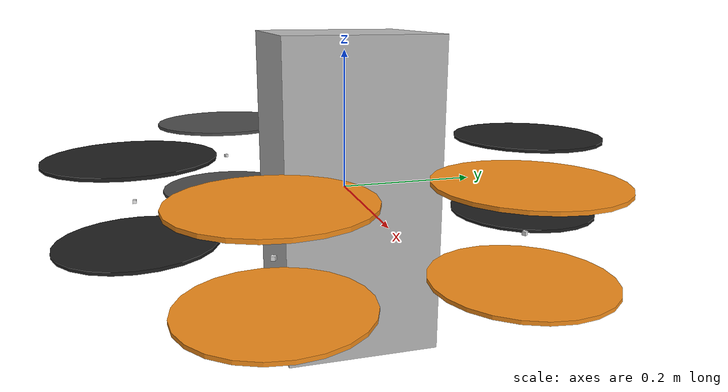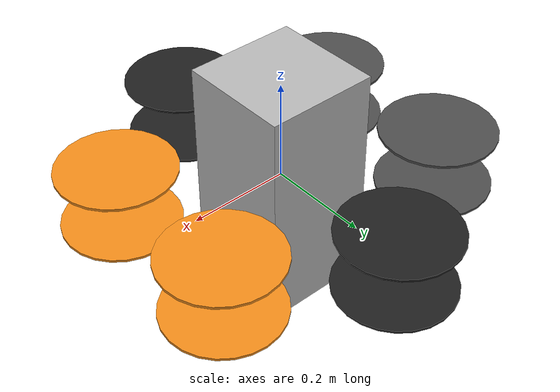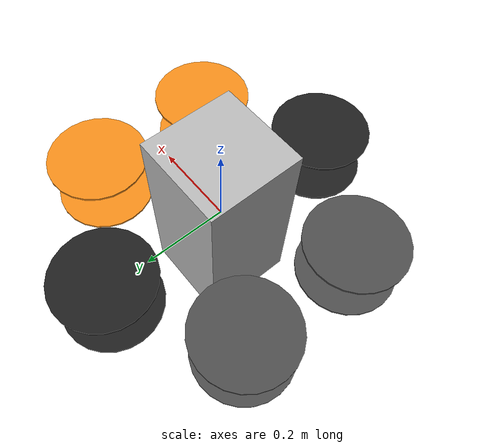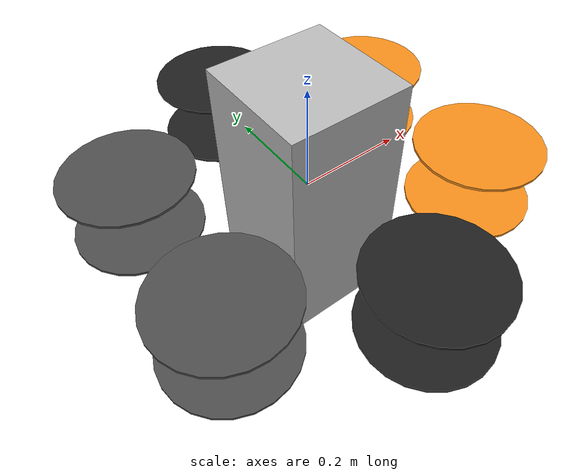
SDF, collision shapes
<sdf version='1.6'>
  <model name='ouzel'>
    <link name='ouzel/base_link'>
      <pose frame=''>0 0 0 0 -0 0</pose>
      <inertial>
        <pose frame=''>0 0 0 0 -0 0</pose>
        <mass>3.13</mass>
        <inertia>
          <ixx>0.0075</ixx>
          <ixy>-3.4208e-05</ixy>
          <ixz>2.4695e-05</ixz>
          <iyy>0.010939</iyy>
          <iyz>-3.8826e-06</iyz>
          <izz>0.01369</izz>
        </inertia>
      </inertial>
      <collision name='ouzel/base_link_inertia_collision'>
        <pose frame=''>0 0 0 0 -0 0</pose>
        <geometry>
          <box>
            <size>0.22 0.22 0.45</size>
          </box>
        </geometry>
      </collision>
      <visual name='ouzel/base_link_inertia_visual'>
        <pose frame=''>0 0 0 0 -0 0</pose>
        <geometry>
          <mesh>
            <scale>1 1 1</scale>
            <uri>model://mav_description/meshes/ouzel_simple.stl</uri>
          </mesh>
        </geometry>
      </visual>
    </link>
    <link name='ouzel/imu_link'>
      <pose frame=''>0 0 0 0 -0 0</pose>
      <inertial>
        <pose frame=''>0 0 0 0 -0 0</pose>
        <mass>0.015</mass>
        <inertia>
          <ixx>1e-05</ixx>
          <ixy>0</ixy>
          <ixz>0</ixz>
          <iyy>1e-05</iyy>
          <iyz>0</iyz>
          <izz>1e-05</izz>
        </inertia>
      </inertial>
    </link>
    <joint name='ouzel/imu_joint' type='revolute'>
      <child>ouzel/imu_link</child>
      <parent>ouzel/base_link</parent>
      <axis>
        <xyz>1 0 0</xyz>
        <limit>
          <lower>0</lower>
          <upper>0</upper>
          <effort>0</effort>
          <velocity>0</velocity>
        </limit>
        <dynamics>
          <spring_reference>0</spring_reference>
          <spring_stiffness>0</spring_stiffness>
        </dynamics>
        <use_parent_model_frame>1</use_parent_model_frame>
      </axis>
    </joint>
    <link name='ouzel/odometry_sensor1_link'>
      <pose frame=''>0 0 0 0 -0 0</pose>
      <inertial>
        <pose frame=''>0 0 0 0 -0 0</pose>
        <mass>1e-05</mass>
        <inertia>
          <ixx>1e-05</ixx>
          <ixy>0</ixy>
          <ixz>0</ixz>
          <iyy>1e-05</iyy>
          <iyz>0</iyz>
          <izz>1e-05</izz>
        </inertia>
      </inertial>
    </link>
    <joint name='ouzel/odometry_sensor1_joint' type='revolute'>
      <child>ouzel/odometry_sensor1_link</child>
      <parent>ouzel/base_link</parent>
      <axis>
        <xyz>1 0 0</xyz>
        <limit>
          <lower>0</lower>
          <upper>0</upper>
          <effort>0</effort>
          <velocity>0</velocity>
        </limit>
        <dynamics>
          <spring_reference>0</spring_reference>
          <spring_stiffness>0</spring_stiffness>
        </dynamics>
        <use_parent_model_frame>1</use_parent_model_frame>
      </axis>
    </joint>
    <link name='ouzel/tilt_unit_0'>
      <pose frame=''>0 -0.3 0 0 -0 -1.5708</pose>
      <inertial>
        <pose frame=''>0 0 0 0 -0 0</pose>
        <mass>0.277</mass>
        <inertia>
          <ixx>0.00034257</ixx>
          <ixy>0</ixy>
          <ixz>0</ixz>
          <iyy>0.0013205</iyy>
          <iyz>0</iyz>
          <izz>0.0010037</izz>
        </inertia>
      </inertial>
      <collision name='ouzel/tilt_unit_0_collision'>
        <pose frame=''>0 0 0 0 -0 0</pose>
        <geometry>
          <box>
            <size>0.005 0.005 0.005</size>
          </box>
        </geometry>
        <surface>
          <contact>
            <ode/>
          </contact>
          <friction>
            <ode/>
          </friction>
        </surface>
      </collision>
      <visual name='ouzel/tilt_unit_0_visual'>
        <pose frame=''>0 0 0 0 -0 0</pose>
        <geometry>
          <mesh>
            <scale>1 1 1</scale>
            <uri>model://rotors_description/meshes/omav/omav_tiltarm.dae</uri>
          </mesh>
        </geometry>
        <material>
          <script>
            <name>Gazebo/White</name>
            <uri>file://media/materials/scripts/gazebo.material</uri>
          </script>
        </material>
      </visual>
      <gravity>1</gravity>
      <velocity_decay/>
    </link>
    <joint name='ouzel/tilt_unit_0_revolutejoint' type='revolute'>
      <child>ouzel/tilt_unit_0</child>
      <parent>ouzel/base_link</parent>
      <axis>
        <xyz>-0 -1 0</xyz>
        <limit>
          <lower>-1e+16</lower>
          <upper>1e+16</upper>
        </limit>
        <dynamics>
          <spring_reference>0</spring_reference>
          <spring_stiffness>0</spring_stiffness>
        </dynamics>
        <use_parent_model_frame>1</use_parent_model_frame>
      </axis>
    </joint>
    <link name='rotor_0'>
      <pose frame=''>0 -0.3 0.06 0 -0 -1.5708</pose>
      <inertial>
        <pose frame=''>0 0 0 0 -0 0</pose>
        <mass>0.0065</mass>
        <inertia>
          <ixx>2.21542e-06</ixx>
          <ixy>0</ixy>
          <ixz>0</ixz>
          <iyy>7.08147e-05</iyy>
          <iyz>0</iyz>
          <izz>7.29326e-05</izz>
        </inertia>
      </inertial>
      <collision name='rotor_0_collision'>
        <pose frame=''>0 0 0 0 -0 0</pose>
        <geometry>
          <cylinder>
            <length>0.005</length>
            <radius>0.1143</radius>
          </cylinder>
        </geometry>
        <surface>
          <contact>
            <ode/>
          </contact>
          <friction>
            <ode/>
          </friction>
        </surface>
      </collision>
      <visual name='rotor_0_visual'>
        <pose frame=''>0 0 0 0 -0 0</pose>
        <geometry>
          <mesh>
            <scale>0.1143 0.1143 0.1143</scale>
            <uri>model://rotors_description/meshes/propeller_ccw.dae</uri>
          </mesh>
        </geometry>
        <material>
          <script>
            <name>Gazebo/Black</name>
            <uri>file://media/materials/scripts/gazebo.material</uri>
          </script>
        </material>
      </visual>
      <gravity>1</gravity>
      <velocity_decay/>
    </link>
    <joint name='rotor_0_joint' type='revolute'>
      <child>rotor_0</child>
      <parent>ouzel/tilt_unit_0</parent>
      <axis>
        <xyz>0 0 1</xyz>
        <limit>
          <lower>-1e+16</lower>
          <upper>1e+16</upper>
        </limit>
        <dynamics>
          <spring_reference>0</spring_reference>
          <spring_stiffness>0</spring_stiffness>
        </dynamics>
        <use_parent_model_frame>1</use_parent_model_frame>
      </axis>
    </joint>
    <link name='rotor_6'>
      <pose frame=''>0 -0.3 -0.06 0 -0 -1.5708</pose>
      <inertial>
        <pose frame=''>0 0 0 0 -0 0</pose>
        <mass>0.0065</mass>
        <inertia>
          <ixx>2.21542e-06</ixx>
          <ixy>0</ixy>
          <ixz>0</ixz>
          <iyy>7.08147e-05</iyy>
          <iyz>0</iyz>
          <izz>7.29326e-05</izz>
        </inertia>
      </inertial>
      <collision name='rotor_6_collision'>
        <pose frame=''>0 0 0 0 -0 0</pose>
        <geometry>
          <cylinder>
            <length>0.005</length>
            <radius>0.1143</radius>
          </cylinder>
        </geometry>
        <surface>
          <contact>
            <ode/>
          </contact>
          <friction>
            <ode/>
          </friction>
        </surface>
      </collision>
      <visual name='rotor_6_visual'>
        <pose frame=''>0 0 0 0 -0 0</pose>
        <geometry>
          <mesh>
            <scale>0.1143 0.1143 0.1143</scale>
            <uri>model://rotors_description/meshes/propeller_cw.dae</uri>
          </mesh>
        </geometry>
        <material>
          <script>
            <name>Gazebo/Black</name>
            <uri>file://media/materials/scripts/gazebo.material</uri>
          </script>
        </material>
      </visual>
      <gravity>1</gravity>
      <velocity_decay/>
    </link>
    <joint name='rotor_6_joint' type='revolute'>
      <child>rotor_6</child>
      <parent>ouzel/tilt_unit_0</parent>
      <axis>
        <xyz>0 0 1</xyz>
        <limit>
          <lower>-1e+16</lower>
          <upper>1e+16</upper>
        </limit>
        <dynamics>
          <spring_reference>0</spring_reference>
          <spring_stiffness>0</spring_stiffness>
        </dynamics>
        <use_parent_model_frame>1</use_parent_model_frame>
      </axis>
    </joint>
    <link name='ouzel/tilt_unit_1'>
      <pose frame=''>0 0.3 0 0 -0 1.5708</pose>
      <inertial>
        <pose frame=''>0 0 0 0 -0 0</pose>
        <mass>0.277</mass>
        <inertia>
          <ixx>0.00034257</ixx>
          <ixy>0</ixy>
          <ixz>0</ixz>
          <iyy>0.0013205</iyy>
          <iyz>0</iyz>
          <izz>0.0010037</izz>
        </inertia>
      </inertial>
      <collision name='ouzel/tilt_unit_1_collision'>
        <pose frame=''>0 0 0 0 -0 0</pose>
        <geometry>
          <box>
            <size>0.005 0.005 0.005</size>
          </box>
        </geometry>
        <surface>
          <contact>
            <ode/>
          </contact>
          <friction>
            <ode/>
          </friction>
        </surface>
      </collision>
      <visual name='ouzel/tilt_unit_1_visual'>
        <pose frame=''>0 0 0 0 -0 0</pose>
        <geometry>
          <mesh>
            <scale>1 1 1</scale>
            <uri>model://rotors_description/meshes/omav/omav_tiltarm.dae</uri>
          </mesh>
        </geometry>
        <material>
          <script>
            <name>Gazebo/White</name>
            <uri>file://media/materials/scripts/gazebo.material</uri>
          </script>
        </material>
      </visual>
      <gravity>1</gravity>
      <velocity_decay/>
    </link>
    <joint name='ouzel/tilt_unit_1_revolutejoint' type='revolute'>
      <child>ouzel/tilt_unit_1</child>
      <parent>ouzel/base_link</parent>
      <axis>
        <xyz>0 1 0</xyz>
        <limit>
          <lower>-1e+16</lower>
          <upper>1e+16</upper>
        </limit>
        <dynamics>
          <spring_reference>0</spring_reference>
          <spring_stiffness>0</spring_stiffness>
        </dynamics>
        <use_parent_model_frame>1</use_parent_model_frame>
      </axis>
    </joint>
    <link name='rotor_1'>
      <pose frame=''>0 0.3 0.06 0 -0 1.5708</pose>
      <inertial>
        <pose frame=''>0 0 0 0 -0 0</pose>
        <mass>0.0065</mass>
        <inertia>
          <ixx>2.21542e-06</ixx>
          <ixy>0</ixy>
          <ixz>0</ixz>
          <iyy>7.08147e-05</iyy>
          <iyz>0</iyz>
          <izz>7.29326e-05</izz>
        </inertia>
      </inertial>
      <collision name='rotor_1_collision'>
        <pose frame=''>0 0 0 0 -0 0</pose>
        <geometry>
          <cylinder>
            <length>0.005</length>
            <radius>0.1143</radius>
          </cylinder>
        </geometry>
        <surface>
          <contact>
            <ode/>
          </contact>
          <friction>
            <ode/>
          </friction>
        </surface>
      </collision>
      <visual name='rotor_1_visual'>
        <pose frame=''>0 0 0 0 -0 0</pose>
        <geometry>
          <mesh>
            <scale>0.1143 0.1143 0.1143</scale>
            <uri>model://rotors_description/meshes/propeller_cw.dae</uri>
          </mesh>
        </geometry>
        <material>
          <script>
            <name>Gazebo/Black</name>
            <uri>file://media/materials/scripts/gazebo.material</uri>
          </script>
        </material>
      </visual>
      <gravity>1</gravity>
      <velocity_decay/>
    </link>
    <joint name='rotor_1_joint' type='revolute'>
      <child>rotor_1</child>
      <parent>ouzel/tilt_unit_1</parent>
      <axis>
        <xyz>0 0 1</xyz>
        <limit>
          <lower>-1e+16</lower>
          <upper>1e+16</upper>
        </limit>
        <dynamics>
          <spring_reference>0</spring_reference>
          <spring_stiffness>0</spring_stiffness>
        </dynamics>
        <use_parent_model_frame>1</use_parent_model_frame>
      </axis>
    </joint>
    <link name='rotor_7'>
      <pose frame=''>0 0.3 -0.06 0 -0 1.5708</pose>
      <inertial>
        <pose frame=''>0 0 0 0 -0 0</pose>
        <mass>0.0065</mass>
        <inertia>
          <ixx>2.21542e-06</ixx>
          <ixy>0</ixy>
          <ixz>0</ixz>
          <iyy>7.08147e-05</iyy>
          <iyz>0</iyz>
          <izz>7.29326e-05</izz>
        </inertia>
      </inertial>
      <collision name='rotor_7_collision'>
        <pose frame=''>0 0 0 0 -0 0</pose>
        <geometry>
          <cylinder>
            <length>0.005</length>
            <radius>0.1143</radius>
          </cylinder>
        </geometry>
        <surface>
          <contact>
            <ode/>
          </contact>
          <friction>
            <ode/>
          </friction>
        </surface>
      </collision>
      <visual name='rotor_7_visual'>
        <pose frame=''>0 0 0 0 -0 0</pose>
        <geometry>
          <mesh>
            <scale>0.1143 0.1143 0.1143</scale>
            <uri>model://rotors_description/meshes/propeller_ccw.dae</uri>
          </mesh>
        </geometry>
        <material>
          <script>
            <name>Gazebo/Black</name>
            <uri>file://media/materials/scripts/gazebo.material</uri>
          </script>
        </material>
      </visual>
      <gravity>1</gravity>
      <velocity_decay/>
    </link>
    <joint name='rotor_7_joint' type='revolute'>
      <child>rotor_7</child>
      <parent>ouzel/tilt_unit_1</parent>
      <axis>
        <xyz>0 0 1</xyz>
        <limit>
          <lower>-1e+16</lower>
          <upper>1e+16</upper>
        </limit>
        <dynamics>
          <spring_reference>0</spring_reference>
          <spring_stiffness>0</spring_stiffness>
        </dynamics>
        <use_parent_model_frame>1</use_parent_model_frame>
      </axis>
    </joint>
    <link name='ouzel/tilt_unit_2'>
      <pose frame=''>0.259808 0.15 0 0 -0 0.523599</pose>
      <inertial>
        <pose frame=''>0 0 0 0 -0 0</pose>
        <mass>0.277</mass>
        <inertia>
          <ixx>0.00034257</ixx>
          <ixy>0</ixy>
          <ixz>0</ixz>
          <iyy>0.0013205</iyy>
          <iyz>0</iyz>
          <izz>0.0010037</izz>
        </inertia>
      </inertial>
      <collision name='ouzel/tilt_unit_2_collision'>
        <pose frame=''>0 0 0 0 -0 0</pose>
        <geometry>
          <box>
            <size>0.005 0.005 0.005</size>
          </box>
        </geometry>
        <surface>
          <contact>
            <ode/>
          </contact>
          <friction>
            <ode/>
          </friction>
        </surface>
      </collision>
      <visual name='ouzel/tilt_unit_2_visual'>
        <pose frame=''>0 0 0 0 -0 0</pose>
        <geometry>
          <mesh>
            <scale>1 1 1</scale>
            <uri>model://rotors_description/meshes/omav/omav_tiltarm.dae</uri>
          </mesh>
        </geometry>
        <material>
          <script>
            <name>Gazebo/White</name>
            <uri>file://media/materials/scripts/gazebo.material</uri>
          </script>
        </material>
      </visual>
      <gravity>1</gravity>
      <velocity_decay/>
    </link>
    <joint name='ouzel/tilt_unit_2_revolutejoint' type='revolute'>
      <child>ouzel/tilt_unit_2</child>
      <parent>ouzel/base_link</parent>
      <axis>
        <xyz>0.866025 0.5 0</xyz>
        <limit>
          <lower>-1e+16</lower>
          <upper>1e+16</upper>
        </limit>
        <dynamics>
          <spring_reference>0</spring_reference>
          <spring_stiffness>0</spring_stiffness>
        </dynamics>
        <use_parent_model_frame>1</use_parent_model_frame>
      </axis>
    </joint>
    <link name='rotor_2'>
      <pose frame=''>0.259808 0.15 0.06 0 -0 0.523599</pose>
      <inertial>
        <pose frame=''>0 0 0 0 -0 0</pose>
        <mass>0.0065</mass>
        <inertia>
          <ixx>2.21542e-06</ixx>
          <ixy>0</ixy>
          <ixz>0</ixz>
          <iyy>7.08147e-05</iyy>
          <iyz>0</iyz>
          <izz>7.29326e-05</izz>
        </inertia>
      </inertial>
      <collision name='rotor_2_collision'>
        <pose frame=''>0 0 0 0 -0 0</pose>
        <geometry>
          <cylinder>
            <length>0.005</length>
            <radius>0.1143</radius>
          </cylinder>
        </geometry>
        <surface>
          <contact>
            <ode/>
          </contact>
          <friction>
            <ode/>
          </friction>
        </surface>
      </collision>
      <visual name='rotor_2_visual'>
        <pose frame=''>0 0 0 0 -0 0</pose>
        <geometry>
          <mesh>
            <scale>0.1143 0.1143 0.1143</scale>
            <uri>model://rotors_description/meshes/propeller_ccw.dae</uri>
          </mesh>
        </geometry>
        <material>
          <script>
            <name>Gazebo/Orange</name>
            <uri>file://media/materials/scripts/gazebo.material</uri>
          </script>
        </material>
      </visual>
      <gravity>1</gravity>
      <velocity_decay/>
    </link>
    <joint name='rotor_2_joint' type='revolute'>
      <child>rotor_2</child>
      <parent>ouzel/tilt_unit_2</parent>
      <axis>
        <xyz>0 0 1</xyz>
        <limit>
          <lower>-1e+16</lower>
          <upper>1e+16</upper>
        </limit>
        <dynamics>
          <spring_reference>0</spring_reference>
          <spring_stiffness>0</spring_stiffness>
        </dynamics>
        <use_parent_model_frame>1</use_parent_model_frame>
      </axis>
    </joint>
    <link name='rotor_8'>
      <pose frame=''>0.259808 0.15 -0.06 0 -0 0.523599</pose>
      <inertial>
        <pose frame=''>0 0 0 0 -0 0</pose>
        <mass>0.0065</mass>
        <inertia>
          <ixx>2.21542e-06</ixx>
          <ixy>0</ixy>
          <ixz>0</ixz>
          <iyy>7.08147e-05</iyy>
          <iyz>0</iyz>
          <izz>7.29326e-05</izz>
        </inertia>
      </inertial>
      <collision name='rotor_8_collision'>
        <pose frame=''>0 0 0 0 -0 0</pose>
        <geometry>
          <cylinder>
            <length>0.005</length>
            <radius>0.1143</radius>
          </cylinder>
        </geometry>
        <surface>
          <contact>
            <ode/>
          </contact>
          <friction>
            <ode/>
          </friction>
        </surface>
      </collision>
      <visual name='rotor_8_visual'>
        <pose frame=''>0 0 0 0 -0 0</pose>
        <geometry>
          <mesh>
            <scale>0.1143 0.1143 0.1143</scale>
            <uri>model://rotors_description/meshes/propeller_cw.dae</uri>
          </mesh>
        </geometry>
        <material>
          <script>
            <name>Gazebo/Orange</name>
            <uri>file://media/materials/scripts/gazebo.material</uri>
          </script>
        </material>
      </visual>
      <gravity>1</gravity>
      <velocity_decay/>
    </link>
    <joint name='rotor_8_joint' type='revolute'>
      <child>rotor_8</child>
      <parent>ouzel/tilt_unit_2</parent>
      <axis>
        <xyz>0 0 1</xyz>
        <limit>
          <lower>-1e+16</lower>
          <upper>1e+16</upper>
        </limit>
        <dynamics>
          <spring_reference>0</spring_reference>
          <spring_stiffness>0</spring_stiffness>
        </dynamics>
        <use_parent_model_frame>1</use_parent_model_frame>
      </axis>
    </joint>
    <link name='ouzel/tilt_unit_3'>
      <pose frame=''>-0.259808 -0.15 0 0 -0 -2.61799</pose>
      <inertial>
        <pose frame=''>0 0 0 0 -0 0</pose>
        <mass>0.277</mass>
        <inertia>
          <ixx>0.00034257</ixx>
          <ixy>0</ixy>
          <ixz>0</ixz>
          <iyy>0.0013205</iyy>
          <iyz>0</iyz>
          <izz>0.0010037</izz>
        </inertia>
      </inertial>
      <collision name='ouzel/tilt_unit_3_collision'>
        <pose frame=''>0 0 0 0 -0 0</pose>
        <geometry>
          <box>
            <size>0.005 0.005 0.005</size>
          </box>
        </geometry>
        <surface>
          <contact>
            <ode/>
          </contact>
          <friction>
            <ode/>
          </friction>
        </surface>
      </collision>
      <visual name='ouzel/tilt_unit_3_visual'>
        <pose frame=''>0 0 0 0 -0 0</pose>
        <geometry>
          <mesh>
            <scale>1 1 1</scale>
            <uri>model://rotors_description/meshes/omav/omav_tiltarm.dae</uri>
          </mesh>
        </geometry>
        <material>
          <script>
            <name>Gazebo/White</name>
            <uri>file://media/materials/scripts/gazebo.material</uri>
          </script>
        </material>
      </visual>
      <gravity>1</gravity>
      <velocity_decay/>
    </link>
    <joint name='ouzel/tilt_unit_3_revolutejoint' type='revolute'>
      <child>ouzel/tilt_unit_3</child>
      <parent>ouzel/base_link</parent>
      <axis>
        <xyz>-0.866025 -0.5 0</xyz>
        <limit>
          <lower>-1e+16</lower>
          <upper>1e+16</upper>
        </limit>
        <dynamics>
          <spring_reference>0</spring_reference>
          <spring_stiffness>0</spring_stiffness>
        </dynamics>
        <use_parent_model_frame>1</use_parent_model_frame>
      </axis>
    </joint>
    <link name='rotor_3'>
      <pose frame=''>-0.259808 -0.15 0.06 0 -0 -2.61799</pose>
      <inertial>
        <pose frame=''>0 0 0 0 -0 0</pose>
        <mass>0.0065</mass>
        <inertia>
          <ixx>2.21542e-06</ixx>
          <ixy>0</ixy>
          <ixz>0</ixz>
          <iyy>7.08147e-05</iyy>
          <iyz>0</iyz>
          <izz>7.29326e-05</izz>
        </inertia>
      </inertial>
      <collision name='rotor_3_collision'>
        <pose frame=''>0 0 0 0 -0 0</pose>
        <geometry>
          <cylinder>
            <length>0.005</length>
            <radius>0.1143</radius>
          </cylinder>
        </geometry>
        <surface>
          <contact>
            <ode/>
          </contact>
          <friction>
            <ode/>
          </friction>
        </surface>
      </collision>
      <visual name='rotor_3_visual'>
        <pose frame=''>0 0 0 0 -0 0</pose>
        <geometry>
          <mesh>
            <scale>0.1143 0.1143 0.1143</scale>
            <uri>model://rotors_description/meshes/propeller_cw.dae</uri>
          </mesh>
        </geometry>
        <material>
          <script>
            <name>Gazebo/DarkGrey</name>
            <uri>file://media/materials/scripts/gazebo.material</uri>
          </script>
        </material>
      </visual>
      <gravity>1</gravity>
      <velocity_decay/>
    </link>
    <joint name='rotor_3_joint' type='revolute'>
      <child>rotor_3</child>
      <parent>ouzel/tilt_unit_3</parent>
      <axis>
        <xyz>0 0 1</xyz>
        <limit>
          <lower>-1e+16</lower>
          <upper>1e+16</upper>
        </limit>
        <dynamics>
          <spring_reference>0</spring_reference>
          <spring_stiffness>0</spring_stiffness>
        </dynamics>
        <use_parent_model_frame>1</use_parent_model_frame>
      </axis>
    </joint>
    <link name='rotor_9'>
      <pose frame=''>-0.259808 -0.15 -0.06 0 -0 -2.61799</pose>
      <inertial>
        <pose frame=''>0 0 0 0 -0 0</pose>
        <mass>0.0065</mass>
        <inertia>
          <ixx>2.21542e-06</ixx>
          <ixy>0</ixy>
          <ixz>0</ixz>
          <iyy>7.08147e-05</iyy>
          <iyz>0</iyz>
          <izz>7.29326e-05</izz>
        </inertia>
      </inertial>
      <collision name='rotor_9_collision'>
        <pose frame=''>0 0 0 0 -0 0</pose>
        <geometry>
          <cylinder>
            <length>0.005</length>
            <radius>0.1143</radius>
          </cylinder>
        </geometry>
        <surface>
          <contact>
            <ode/>
          </contact>
          <friction>
            <ode/>
          </friction>
        </surface>
      </collision>
      <visual name='rotor_9_visual'>
        <pose frame=''>0 0 0 0 -0 0</pose>
        <geometry>
          <mesh>
            <scale>0.1143 0.1143 0.1143</scale>
            <uri>model://rotors_description/meshes/propeller_ccw.dae</uri>
          </mesh>
        </geometry>
        <material>
          <script>
            <name>Gazebo/DarkGrey</name>
            <uri>file://media/materials/scripts/gazebo.material</uri>
          </script>
        </material>
      </visual>
      <gravity>1</gravity>
      <velocity_decay/>
    </link>
    <joint name='rotor_9_joint' type='revolute'>
      <child>rotor_9</child>
      <parent>ouzel/tilt_unit_3</parent>
      <axis>
        <xyz>0 0 1</xyz>
        <limit>
          <lower>-1e+16</lower>
          <upper>1e+16</upper>
        </limit>
        <dynamics>
          <spring_reference>0</spring_reference>
          <spring_stiffness>0</spring_stiffness>
        </dynamics>
        <use_parent_model_frame>1</use_parent_model_frame>
      </axis>
    </joint>
    <link name='ouzel/tilt_unit_4'>
      <pose frame=''>0.259808 -0.15 0 0 -0 -0.523599</pose>
      <inertial>
        <pose frame=''>0 0 0 0 -0 0</pose>
        <mass>0.277</mass>
        <inertia>
          <ixx>0.00034257</ixx>
          <ixy>0</ixy>
          <ixz>0</ixz>
          <iyy>0.0013205</iyy>
          <iyz>0</iyz>
          <izz>0.0010037</izz>
        </inertia>
      </inertial>
      <collision name='ouzel/tilt_unit_4_collision'>
        <pose frame=''>0 0 0 0 -0 0</pose>
        <geometry>
          <box>
            <size>0.005 0.005 0.005</size>
          </box>
        </geometry>
        <surface>
          <contact>
            <ode/>
          </contact>
          <friction>
            <ode/>
          </friction>
        </surface>
      </collision>
      <visual name='ouzel/tilt_unit_4_visual'>
        <pose frame=''>0 0 0 0 -0 0</pose>
        <geometry>
          <mesh>
            <scale>1 1 1</scale>
            <uri>model://rotors_description/meshes/omav/omav_tiltarm.dae</uri>
          </mesh>
        </geometry>
        <material>
          <script>
            <name>Gazebo/White</name>
            <uri>file://media/materials/scripts/gazebo.material</uri>
          </script>
        </material>
      </visual>
      <gravity>1</gravity>
      <velocity_decay/>
    </link>
    <joint name='ouzel/tilt_unit_4_revolutejoint' type='revolute'>
      <child>ouzel/tilt_unit_4</child>
      <parent>ouzel/base_link</parent>
      <axis>
        <xyz>0.866025 -0.5 0</xyz>
        <limit>
          <lower>-1e+16</lower>
          <upper>1e+16</upper>
        </limit>
        <dynamics>
          <spring_reference>0</spring_reference>
          <spring_stiffness>0</spring_stiffness>
        </dynamics>
        <use_parent_model_frame>1</use_parent_model_frame>
      </axis>
    </joint>
    <link name='rotor_10'>
      <pose frame=''>0.259808 -0.15 -0.06 0 -0 -0.523599</pose>
      <inertial>
        <pose frame=''>0 0 0 0 -0 0</pose>
        <mass>0.0065</mass>
        <inertia>
          <ixx>2.21542e-06</ixx>
          <ixy>0</ixy>
          <ixz>0</ixz>
          <iyy>7.08147e-05</iyy>
          <iyz>0</iyz>
          <izz>7.29326e-05</izz>
        </inertia>
      </inertial>
      <collision name='rotor_10_collision'>
        <pose frame=''>0 0 0 0 -0 0</pose>
        <geometry>
          <cylinder>
            <length>0.005</length>
            <radius>0.1143</radius>
          </cylinder>
        </geometry>
        <surface>
          <contact>
            <ode/>
          </contact>
          <friction>
            <ode/>
          </friction>
        </surface>
      </collision>
      <visual name='rotor_10_visual'>
        <pose frame=''>0 0 0 0 -0 0</pose>
        <geometry>
          <mesh>
            <scale>0.1143 0.1143 0.1143</scale>
            <uri>model://rotors_description/meshes/propeller_ccw.dae</uri>
          </mesh>
        </geometry>
        <material>
          <script>
            <name>Gazebo/Orange</name>
            <uri>file://media/materials/scripts/gazebo.material</uri>
          </script>
        </material>
      </visual>
      <gravity>1</gravity>
      <velocity_decay/>
    </link>
    <joint name='rotor_10_joint' type='revolute'>
      <child>rotor_10</child>
      <parent>ouzel/tilt_unit_4</parent>
      <axis>
        <xyz>0 0 1</xyz>
        <limit>
          <lower>-1e+16</lower>
          <upper>1e+16</upper>
        </limit>
        <dynamics>
          <spring_reference>0</spring_reference>
          <spring_stiffness>0</spring_stiffness>
        </dynamics>
        <use_parent_model_frame>1</use_parent_model_frame>
      </axis>
    </joint>
    <link name='rotor_4'>
      <pose frame=''>0.259808 -0.15 0.06 0 -0 -0.523599</pose>
      <inertial>
        <pose frame=''>0 0 0 0 -0 0</pose>
        <mass>0.0065</mass>
        <inertia>
          <ixx>2.21542e-06</ixx>
          <ixy>0</ixy>
          <ixz>0</ixz>
          <iyy>7.08147e-05</iyy>
          <iyz>0</iyz>
          <izz>7.29326e-05</izz>
        </inertia>
      </inertial>
      <collision name='rotor_4_collision'>
        <pose frame=''>0 0 0 0 -0 0</pose>
        <geometry>
          <cylinder>
            <length>0.005</length>
            <radius>0.1143</radius>
          </cylinder>
        </geometry>
        <surface>
          <contact>
            <ode/>
          </contact>
          <friction>
            <ode/>
          </friction>
        </surface>
      </collision>
      <visual name='rotor_4_visual'>
        <pose frame=''>0 0 0 0 -0 0</pose>
        <geometry>
          <mesh>
            <scale>0.1143 0.1143 0.1143</scale>
            <uri>model://rotors_description/meshes/propeller_cw.dae</uri>
          </mesh>
        </geometry>
        <material>
          <script>
            <name>Gazebo/Orange</name>
            <uri>file://media/materials/scripts/gazebo.material</uri>
          </script>
        </material>
      </visual>
      <gravity>1</gravity>
      <velocity_decay/>
    </link>
    <joint name='rotor_4_joint' type='revolute'>
      <child>rotor_4</child>
      <parent>ouzel/tilt_unit_4</parent>
      <axis>
        <xyz>0 0 1</xyz>
        <limit>
          <lower>-1e+16</lower>
          <upper>1e+16</upper>
        </limit>
        <dynamics>
          <spring_reference>0</spring_reference>
          <spring_stiffness>0</spring_stiffness>
        </dynamics>
        <use_parent_model_frame>1</use_parent_model_frame>
      </axis>
    </joint>
    <link name='ouzel/tilt_unit_5'>
      <pose frame=''>-0.259808 0.15 0 0 -0 2.61799</pose>
      <inertial>
        <pose frame=''>0 0 0 0 -0 0</pose>
        <mass>0.277</mass>
        <inertia>
          <ixx>0.00034257</ixx>
          <ixy>0</ixy>
          <ixz>0</ixz>
          <iyy>0.0013205</iyy>
          <iyz>0</iyz>
          <izz>0.0010037</izz>
        </inertia>
      </inertial>
      <collision name='ouzel/tilt_unit_5_collision'>
        <pose frame=''>0 0 0 0 -0 0</pose>
        <geometry>
          <box>
            <size>0.005 0.005 0.005</size>
          </box>
        </geometry>
        <surface>
          <contact>
            <ode/>
          </contact>
          <friction>
            <ode/>
          </friction>
        </surface>
      </collision>
      <visual name='ouzel/tilt_unit_5_visual'>
        <pose frame=''>0 0 0 0 -0 0</pose>
        <geometry>
          <mesh>
            <scale>1 1 1</scale>
            <uri>model://rotors_description/meshes/omav/omav_tiltarm.dae</uri>
          </mesh>
        </geometry>
        <material>
          <script>
            <name>Gazebo/White</name>
            <uri>file://media/materials/scripts/gazebo.material</uri>
          </script>
        </material>
      </visual>
      <gravity>1</gravity>
      <velocity_decay/>
    </link>
    <joint name='ouzel/tilt_unit_5_revolutejoint' type='revolute'>
      <child>ouzel/tilt_unit_5</child>
      <parent>ouzel/base_link</parent>
      <axis>
        <xyz>-0.866025 0.5 0</xyz>
        <limit>
          <lower>-1e+16</lower>
          <upper>1e+16</upper>
        </limit>
        <dynamics>
          <spring_reference>0</spring_reference>
          <spring_stiffness>0</spring_stiffness>
        </dynamics>
        <use_parent_model_frame>1</use_parent_model_frame>
      </axis>
    </joint>
    <link name='rotor_11'>
      <pose frame=''>-0.259808 0.15 -0.06 0 -0 2.61799</pose>
      <inertial>
        <pose frame=''>0 0 0 0 -0 0</pose>
        <mass>0.0065</mass>
        <inertia>
          <ixx>2.21542e-06</ixx>
          <ixy>0</ixy>
          <ixz>0</ixz>
          <iyy>7.08147e-05</iyy>
          <iyz>0</iyz>
          <izz>7.29326e-05</izz>
        </inertia>
      </inertial>
      <collision name='rotor_11_collision'>
        <pose frame=''>0 0 0 0 -0 0</pose>
        <geometry>
          <cylinder>
            <length>0.005</length>
            <radius>0.1143</radius>
          </cylinder>
        </geometry>
        <surface>
          <contact>
            <ode/>
          </contact>
          <friction>
            <ode/>
          </friction>
        </surface>
      </collision>
      <visual name='rotor_11_visual'>
        <pose frame=''>0 0 0 0 -0 0</pose>
        <geometry>
          <mesh>
            <scale>0.1143 0.1143 0.1143</scale>
            <uri>model://rotors_description/meshes/propeller_cw.dae</uri>
          </mesh>
        </geometry>
        <material>
          <script>
            <name>Gazebo/DarkGrey</name>
            <uri>file://media/materials/scripts/gazebo.material</uri>
          </script>
        </material>
      </visual>
      <gravity>1</gravity>
      <velocity_decay/>
    </link>
    <joint name='rotor_11_joint' type='revolute'>
      <child>rotor_11</child>
      <parent>ouzel/tilt_unit_5</parent>
      <axis>
        <xyz>0 0 1</xyz>
        <limit>
          <lower>-1e+16</lower>
          <upper>1e+16</upper>
        </limit>
        <dynamics>
          <spring_reference>0</spring_reference>
          <spring_stiffness>0</spring_stiffness>
        </dynamics>
        <use_parent_model_frame>1</use_parent_model_frame>
      </axis>
    </joint>
    <link name='rotor_5'>
      <pose frame=''>-0.259808 0.15 0.06 0 -0 2.61799</pose>
      <inertial>
        <pose frame=''>0 0 0 0 -0 0</pose>
        <mass>0.0065</mass>
        <inertia>
          <ixx>2.21542e-06</ixx>
          <ixy>0</ixy>
          <ixz>0</ixz>
          <iyy>7.08147e-05</iyy>
          <iyz>0</iyz>
          <izz>7.29326e-05</izz>
        </inertia>
      </inertial>
      <collision name='rotor_5_collision'>
        <pose frame=''>0 0 0 0 -0 0</pose>
        <geometry>
          <cylinder>
            <length>0.005</length>
            <radius>0.1143</radius>
          </cylinder>
        </geometry>
        <surface>
          <contact>
            <ode/>
          </contact>
          <friction>
            <ode/>
          </friction>
        </surface>
      </collision>
      <visual name='rotor_5_visual'>
        <pose frame=''>0 0 0 0 -0 0</pose>
        <geometry>
          <mesh>
            <scale>0.1143 0.1143 0.1143</scale>
            <uri>model://rotors_description/meshes/propeller_ccw.dae</uri>
          </mesh>
        </geometry>
        <material>
          <script>
            <name>Gazebo/DarkGrey</name>
            <uri>file://media/materials/scripts/gazebo.material</uri>
          </script>
        </material>
      </visual>
      <gravity>1</gravity>
      <velocity_decay/>
    </link>
    <joint name='rotor_5_joint' type='revolute'>
      <child>rotor_5</child>
      <parent>ouzel/tilt_unit_5</parent>
      <axis>
        <xyz>0 0 1</xyz>
        <limit>
          <lower>-1e+16</lower>
          <upper>1e+16</upper>
        </limit>
        <dynamics>
          <spring_reference>0</spring_reference>
          <spring_stiffness>0</spring_stiffness>
        </dynamics>
        <use_parent_model_frame>1</use_parent_model_frame>
      </axis>
    </joint>
    <plugin name='multirotor_base_plugin' filename='librotors_gazebo_multirotor_base_plugin.so'>
      <robotNamespace>ouzel</robotNamespace>
      <linkName>ouzel/base_link</linkName>
      <rotorVelocitySlowdownSim>10</rotorVelocitySlowdownSim>
    </plugin>
    <plugin name='right_tilt_unit_model' filename='librotors_gazebo_motor_model.so'>
      <robotNamespace>ouzel</robotNamespace>
      <jointName>ouzel/tilt_unit_0_revolutejoint</jointName>
      <linkName>ouzel/tilt_unit_0</linkName>
      <turningDirection>ccw</turningDirection>
      <motorType>position</motorType>
      <commandSubTopic>/gazebo/command/motor_speed</commandSubTopic>
      <motorNumber>12</motorNumber>
      <motorSpeedPubTopic>/tilt_motor_0/velocity</motorSpeedPubTopic>
      <motorPositionPubTopic>/tilt_motor_0/position</motorPositionPubTopic>
      <joint_control_pid>
        <p>0.11</p>
        <i>0.0</i>
        <d>0.01</d>
        <iMax>1.0</iMax>
        <iMin>-1.0</iMin>
        <cmdMax>2.0</cmdMax>
        <cmdMin>-2.0</cmdMin>
      </joint_control_pid>
    </plugin>
    <plugin name='right_upper_motor_model' filename='librotors_gazebo_motor_model.so'>
      <robotNamespace>ouzel</robotNamespace>
      <jointName>rotor_0_joint</jointName>
      <linkName>rotor_0</linkName>
      <turningDirection>ccw</turningDirection>
      <timeConstantUp>0.0125</timeConstantUp>
      <timeConstantDown>0.025</timeConstantDown>
      <maxRotVelocity>1700</maxRotVelocity>
      <motorConstant>7.2e-06</motorConstant>
      <momentConstant>0.015</momentConstant>
      <commandSubTopic>/gazebo/command/motor_speed</commandSubTopic>
      <motorNumber>0</motorNumber>
      <rotorDragCoefficient>8.06428e-05</rotorDragCoefficient>
      <rollingMomentCoefficient>1e-06</rollingMomentCoefficient>
      <motorSpeedPubTopic>/motor_speed/0_upper</motorSpeedPubTopic>
      <rotorVelocitySlowdownSim>10</rotorVelocitySlowdownSim>
    </plugin>
    <plugin name='right_lower_motor_model' filename='librotors_gazebo_motor_model.so'>
      <robotNamespace>ouzel</robotNamespace>
      <jointName>rotor_6_joint</jointName>
      <linkName>rotor_6</linkName>
      <turningDirection>cw</turningDirection>
      <timeConstantUp>0.0125</timeConstantUp>
      <timeConstantDown>0.025</timeConstantDown>
      <maxRotVelocity>1700</maxRotVelocity>
      <motorConstant>7.2e-06</motorConstant>
      <momentConstant>0.005</momentConstant>
      <commandSubTopic>/gazebo/command/motor_speed</commandSubTopic>
      <motorNumber>6</motorNumber>
      <rotorDragCoefficient>8.06428e-05</rotorDragCoefficient>
      <rollingMomentCoefficient>1e-06</rollingMomentCoefficient>
      <motorSpeedPubTopic>/motor_speed/0_lower</motorSpeedPubTopic>
      <rotorVelocitySlowdownSim>10</rotorVelocitySlowdownSim>
    </plugin>
    <plugin name='left_tilt_unit_model' filename='librotors_gazebo_motor_model.so'>
      <robotNamespace>ouzel</robotNamespace>
      <jointName>ouzel/tilt_unit_1_revolutejoint</jointName>
      <linkName>ouzel/tilt_unit_1</linkName>
      <turningDirection>ccw</turningDirection>
      <motorType>position</motorType>
      <commandSubTopic>/gazebo/command/motor_speed</commandSubTopic>
      <motorNumber>13</motorNumber>
      <motorSpeedPubTopic>/tilt_motor_1/velocity</motorSpeedPubTopic>
      <motorPositionPubTopic>/tilt_motor_1/position</motorPositionPubTopic>
      <joint_control_pid>
        <p>0.11</p>
        <i>0.0</i>
        <d>0.01</d>
        <iMax>1.0</iMax>
        <iMin>-1.0</iMin>
        <cmdMax>2.0</cmdMax>
        <cmdMin>-2.0</cmdMin>
      </joint_control_pid>
    </plugin>
    <plugin name='left_upper_motor_model' filename='librotors_gazebo_motor_model.so'>
      <robotNamespace>ouzel</robotNamespace>
      <jointName>rotor_1_joint</jointName>
      <linkName>rotor_1</linkName>
      <turningDirection>cw</turningDirection>
      <timeConstantUp>0.0125</timeConstantUp>
      <timeConstantDown>0.025</timeConstantDown>
      <maxRotVelocity>1700</maxRotVelocity>
      <motorConstant>7.2e-06</motorConstant>
      <momentConstant>0.015</momentConstant>
      <commandSubTopic>/gazebo/command/motor_speed</commandSubTopic>
      <motorNumber>1</motorNumber>
      <rotorDragCoefficient>8.06428e-05</rotorDragCoefficient>
      <rollingMomentCoefficient>1e-06</rollingMomentCoefficient>
      <motorSpeedPubTopic>/motor_speed/1_upper</motorSpeedPubTopic>
      <rotorVelocitySlowdownSim>10</rotorVelocitySlowdownSim>
    </plugin>
    <plugin name='left_lower_motor_model' filename='librotors_gazebo_motor_model.so'>
      <robotNamespace>ouzel</robotNamespace>
      <jointName>rotor_7_joint</jointName>
      <linkName>rotor_7</linkName>
      <turningDirection>ccw</turningDirection>
      <timeConstantUp>0.0125</timeConstantUp>
      <timeConstantDown>0.025</timeConstantDown>
      <maxRotVelocity>1700</maxRotVelocity>
      <motorConstant>7.2e-06</motorConstant>
      <momentConstant>0.005</momentConstant>
      <commandSubTopic>/gazebo/command/motor_speed</commandSubTopic>
      <motorNumber>7</motorNumber>
      <rotorDragCoefficient>8.06428e-05</rotorDragCoefficient>
      <rollingMomentCoefficient>1e-06</rollingMomentCoefficient>
      <motorSpeedPubTopic>/motor_speed/1_lower</motorSpeedPubTopic>
      <rotorVelocitySlowdownSim>10</rotorVelocitySlowdownSim>
    </plugin>
    <plugin name='front_left_tilt_unit_model' filename='librotors_gazebo_motor_model.so'>
      <robotNamespace>ouzel</robotNamespace>
      <jointName>ouzel/tilt_unit_2_revolutejoint</jointName>
      <linkName>ouzel/tilt_unit_2</linkName>
      <turningDirection>ccw</turningDirection>
      <motorType>position</motorType>
      <commandSubTopic>/gazebo/command/motor_speed</commandSubTopic>
      <motorNumber>14</motorNumber>
      <motorSpeedPubTopic>/tilt_motor_2/velocity</motorSpeedPubTopic>
      <motorPositionPubTopic>/tilt_motor_2/position</motorPositionPubTopic>
      <joint_control_pid>
        <p>0.11</p>
        <i>0.0</i>
        <d>0.01</d>
        <iMax>1.0</iMax>
        <iMin>-1.0</iMin>
        <cmdMax>2.0</cmdMax>
        <cmdMin>-2.0</cmdMin>
      </joint_control_pid>
    </plugin>
    <plugin name='front_left_upper_motor_model' filename='librotors_gazebo_motor_model.so'>
      <robotNamespace>ouzel</robotNamespace>
      <jointName>rotor_2_joint</jointName>
      <linkName>rotor_2</linkName>
      <turningDirection>ccw</turningDirection>
      <timeConstantUp>0.0125</timeConstantUp>
      <timeConstantDown>0.025</timeConstantDown>
      <maxRotVelocity>1700</maxRotVelocity>
      <motorConstant>7.2e-06</motorConstant>
      <momentConstant>0.015</momentConstant>
      <commandSubTopic>/gazebo/command/motor_speed</commandSubTopic>
      <motorNumber>2</motorNumber>
      <rotorDragCoefficient>8.06428e-05</rotorDragCoefficient>
      <rollingMomentCoefficient>1e-06</rollingMomentCoefficient>
      <motorSpeedPubTopic>/motor_speed/2_upper</motorSpeedPubTopic>
      <rotorVelocitySlowdownSim>10</rotorVelocitySlowdownSim>
    </plugin>
    <plugin name='front_left_lower_motor_model' filename='librotors_gazebo_motor_model.so'>
      <robotNamespace>ouzel</robotNamespace>
      <jointName>rotor_8_joint</jointName>
      <linkName>rotor_8</linkName>
      <turningDirection>cw</turningDirection>
      <timeConstantUp>0.0125</timeConstantUp>
      <timeConstantDown>0.025</timeConstantDown>
      <maxRotVelocity>1700</maxRotVelocity>
      <motorConstant>7.2e-06</motorConstant>
      <momentConstant>0.005</momentConstant>
      <commandSubTopic>/gazebo/command/motor_speed</commandSubTopic>
      <motorNumber>8</motorNumber>
      <rotorDragCoefficient>8.06428e-05</rotorDragCoefficient>
      <rollingMomentCoefficient>1e-06</rollingMomentCoefficient>
      <motorSpeedPubTopic>/motor_speed/2_lower</motorSpeedPubTopic>
      <rotorVelocitySlowdownSim>10</rotorVelocitySlowdownSim>
    </plugin>
    <plugin name='back_right_tilt_unit_model' filename='librotors_gazebo_motor_model.so'>
      <robotNamespace>ouzel</robotNamespace>
      <jointName>ouzel/tilt_unit_3_revolutejoint</jointName>
      <linkName>ouzel/tilt_unit_3</linkName>
      <turningDirection>ccw</turningDirection>
      <motorType>position</motorType>
      <commandSubTopic>/gazebo/command/motor_speed</commandSubTopic>
      <motorNumber>15</motorNumber>
      <motorSpeedPubTopic>/tilt_motor_3/velocity</motorSpeedPubTopic>
      <motorPositionPubTopic>/tilt_motor_3/position</motorPositionPubTopic>
      <joint_control_pid>
        <p>0.11</p>
        <i>0.0</i>
        <d>0.01</d>
        <iMax>1.0</iMax>
        <iMin>-1.0</iMin>
        <cmdMax>2.0</cmdMax>
        <cmdMin>-2.0</cmdMin>
      </joint_control_pid>
    </plugin>
    <plugin name='back_right_upper_motor_model' filename='librotors_gazebo_motor_model.so'>
      <robotNamespace>ouzel</robotNamespace>
      <jointName>rotor_3_joint</jointName>
      <linkName>rotor_3</linkName>
      <turningDirection>cw</turningDirection>
      <timeConstantUp>0.0125</timeConstantUp>
      <timeConstantDown>0.025</timeConstantDown>
      <maxRotVelocity>1700</maxRotVelocity>
      <motorConstant>7.2e-06</motorConstant>
      <momentConstant>0.015</momentConstant>
      <commandSubTopic>/gazebo/command/motor_speed</commandSubTopic>
      <motorNumber>3</motorNumber>
      <rotorDragCoefficient>8.06428e-05</rotorDragCoefficient>
      <rollingMomentCoefficient>1e-06</rollingMomentCoefficient>
      <motorSpeedPubTopic>/motor_speed/3_upper</motorSpeedPubTopic>
      <rotorVelocitySlowdownSim>10</rotorVelocitySlowdownSim>
    </plugin>
    <plugin name='back_right_lower_motor_model' filename='librotors_gazebo_motor_model.so'>
      <robotNamespace>ouzel</robotNamespace>
      <jointName>rotor_9_joint</jointName>
      <linkName>rotor_9</linkName>
      <turningDirection>ccw</turningDirection>
      <timeConstantUp>0.0125</timeConstantUp>
      <timeConstantDown>0.025</timeConstantDown>
      <maxRotVelocity>1700</maxRotVelocity>
      <motorConstant>7.2e-06</motorConstant>
      <momentConstant>0.005</momentConstant>
      <commandSubTopic>/gazebo/command/motor_speed</commandSubTopic>
      <motorNumber>9</motorNumber>
      <rotorDragCoefficient>8.06428e-05</rotorDragCoefficient>
      <rollingMomentCoefficient>1e-06</rollingMomentCoefficient>
      <motorSpeedPubTopic>/motor_speed/3_lower</motorSpeedPubTopic>
      <rotorVelocitySlowdownSim>10</rotorVelocitySlowdownSim>
    </plugin>
    <plugin name='front_right_tilt_unit_model' filename='librotors_gazebo_motor_model.so'>
      <robotNamespace>ouzel</robotNamespace>
      <jointName>ouzel/tilt_unit_4_revolutejoint</jointName>
      <linkName>ouzel/tilt_unit_4</linkName>
      <turningDirection>ccw</turningDirection>
      <motorType>position</motorType>
      <commandSubTopic>/gazebo/command/motor_speed</commandSubTopic>
      <motorNumber>16</motorNumber>
      <motorSpeedPubTopic>/tilt_motor_4/velocity</motorSpeedPubTopic>
      <motorPositionPubTopic>/tilt_motor_4/position</motorPositionPubTopic>
      <joint_control_pid>
        <p>0.11</p>
        <i>0.0</i>
        <d>0.01</d>
        <iMax>1.0</iMax>
        <iMin>-1.0</iMin>
        <cmdMax>2.0</cmdMax>
        <cmdMin>-2.0</cmdMin>
      </joint_control_pid>
    </plugin>
    <plugin name='front_right_upper_motor_model' filename='librotors_gazebo_motor_model.so'>
      <robotNamespace>ouzel</robotNamespace>
      <jointName>rotor_4_joint</jointName>
      <linkName>rotor_4</linkName>
      <turningDirection>cw</turningDirection>
      <timeConstantUp>0.0125</timeConstantUp>
      <timeConstantDown>0.025</timeConstantDown>
      <maxRotVelocity>1700</maxRotVelocity>
      <motorConstant>7.2e-06</motorConstant>
      <momentConstant>0.015</momentConstant>
      <commandSubTopic>/gazebo/command/motor_speed</commandSubTopic>
      <motorNumber>4</motorNumber>
      <rotorDragCoefficient>8.06428e-05</rotorDragCoefficient>
      <rollingMomentCoefficient>1e-06</rollingMomentCoefficient>
      <motorSpeedPubTopic>/motor_speed/4_upper</motorSpeedPubTopic>
      <rotorVelocitySlowdownSim>10</rotorVelocitySlowdownSim>
    </plugin>
    <plugin name='front_right_lower_motor_model' filename='librotors_gazebo_motor_model.so'>
      <robotNamespace>ouzel</robotNamespace>
      <jointName>rotor_10_joint</jointName>
      <linkName>rotor_10</linkName>
      <turningDirection>ccw</turningDirection>
      <timeConstantUp>0.0125</timeConstantUp>
      <timeConstantDown>0.025</timeConstantDown>
      <maxRotVelocity>1700</maxRotVelocity>
      <motorConstant>7.2e-06</motorConstant>
      <momentConstant>0.005</momentConstant>
      <commandSubTopic>/gazebo/command/motor_speed</commandSubTopic>
      <motorNumber>10</motorNumber>
      <rotorDragCoefficient>8.06428e-05</rotorDragCoefficient>
      <rollingMomentCoefficient>1e-06</rollingMomentCoefficient>
      <motorSpeedPubTopic>/motor_speed/4_lower</motorSpeedPubTopic>
      <rotorVelocitySlowdownSim>10</rotorVelocitySlowdownSim>
    </plugin>
    <plugin name='back_left_tilt_unit_model' filename='librotors_gazebo_motor_model.so'>
      <robotNamespace>ouzel</robotNamespace>
      <jointName>ouzel/tilt_unit_5_revolutejoint</jointName>
      <linkName>ouzel/tilt_unit_5</linkName>
      <turningDirection>ccw</turningDirection>
      <motorType>position</motorType>
      <commandSubTopic>/gazebo/command/motor_speed</commandSubTopic>
      <motorNumber>17</motorNumber>
      <motorSpeedPubTopic>/tilt_motor_5/velocity</motorSpeedPubTopic>
      <motorPositionPubTopic>/tilt_motor_5/position</motorPositionPubTopic>
      <joint_control_pid>
        <p>0.11</p>
        <i>0.0</i>
        <d>0.01</d>
        <iMax>1.0</iMax>
        <iMin>-1.0</iMin>
        <cmdMax>2.0</cmdMax>
        <cmdMin>-2.0</cmdMin>
      </joint_control_pid>
    </plugin>
    <plugin name='back_left_upper_motor_model' filename='librotors_gazebo_motor_model.so'>
      <robotNamespace>ouzel</robotNamespace>
      <jointName>rotor_5_joint</jointName>
      <linkName>rotor_5</linkName>
      <turningDirection>ccw</turningDirection>
      <timeConstantUp>0.0125</timeConstantUp>
      <timeConstantDown>0.025</timeConstantDown>
      <maxRotVelocity>1700</maxRotVelocity>
      <motorConstant>7.2e-06</motorConstant>
      <momentConstant>0.015</momentConstant>
      <commandSubTopic>/gazebo/command/motor_speed</commandSubTopic>
      <motorNumber>5</motorNumber>
      <rotorDragCoefficient>8.06428e-05</rotorDragCoefficient>
      <rollingMomentCoefficient>1e-06</rollingMomentCoefficient>
      <motorSpeedPubTopic>/motor_speed/5_upper</motorSpeedPubTopic>
      <rotorVelocitySlowdownSim>10</rotorVelocitySlowdownSim>
    </plugin>
    <plugin name='back_left_lower_motor_model' filename='librotors_gazebo_motor_model.so'>
      <robotNamespace>ouzel</robotNamespace>
      <jointName>rotor_11_joint</jointName>
      <linkName>rotor_11</linkName>
      <turningDirection>cw</turningDirection>
      <timeConstantUp>0.0125</timeConstantUp>
      <timeConstantDown>0.025</timeConstantDown>
      <maxRotVelocity>1700</maxRotVelocity>
      <motorConstant>7.2e-06</motorConstant>
      <momentConstant>0.005</momentConstant>
      <commandSubTopic>/gazebo/command/motor_speed</commandSubTopic>
      <motorNumber>11</motorNumber>
      <rotorDragCoefficient>8.06428e-05</rotorDragCoefficient>
      <rollingMomentCoefficient>1e-06</rollingMomentCoefficient>
      <motorSpeedPubTopic>/motor_speed/5_lower</motorSpeedPubTopic>
      <rotorVelocitySlowdownSim>10</rotorVelocitySlowdownSim>
    </plugin>
    <plugin name='mavlink_interface' filename='librotors_gazebo_mavlink_interface.so'>
      <robotNamespace>ouzel</robotNamespace>
      <imu_rate>102</imu_rate>
      <imuSubTopic>/imu</imuSubTopic>
      <mavlink_addr>INADDR_ANY</mavlink_addr>
      <mavlink_udp_port>14560</mavlink_udp_port>
      <motorSpeedCommandPubTopic>/gazebo/command/motor_speed</motorSpeedCommandPubTopic>
      <control_channels>
        <channel name='rotor0'>
          <input_index>0</input_index>
          <input_offset>0</input_offset>
          <input_scaling>1700</input_scaling>
          <zero_position_disarmed>0</zero_position_disarmed>
          <zero_position_armed>100</zero_position_armed>
          <joint_control_type>velocity</joint_control_type>
        </channel>
        <channel name='rotor1'>
          <input_index>1</input_index>
          <input_offset>0</input_offset>
          <input_scaling>1700</input_scaling>
          <zero_position_disarmed>0</zero_position_disarmed>
          <zero_position_armed>100</zero_position_armed>
          <joint_control_type>velocity</joint_control_type>
        </channel>
        <channel name='rotor2'>
          <input_index>2</input_index>
          <input_offset>0</input_offset>
          <input_scaling>1700</input_scaling>
          <zero_position_disarmed>0</zero_position_disarmed>
          <zero_position_armed>100</zero_position_armed>
          <joint_control_type>velocity</joint_control_type>
        </channel>
        <channel name='rotor3'>
          <input_index>3</input_index>
          <input_offset>0</input_offset>
          <input_scaling>1700</input_scaling>
          <zero_position_disarmed>0</zero_position_disarmed>
          <zero_position_armed>100</zero_position_armed>
          <joint_control_type>velocity</joint_control_type>
        </channel>
        <channel name='rotor4'>
          <input_index>4</input_index>
          <input_offset>0</input_offset>
          <input_scaling>1700</input_scaling>
          <zero_position_disarmed>0</zero_position_disarmed>
          <zero_position_armed>100</zero_position_armed>
          <joint_control_type>velocity</joint_control_type>
        </channel>
        <channel name='rotor5'>
          <input_index>5</input_index>
          <input_offset>0</input_offset>
          <input_scaling>1700</input_scaling>
          <zero_position_disarmed>0</zero_position_disarmed>
          <zero_position_armed>100</zero_position_armed>
          <joint_control_type>velocity</joint_control_type>
        </channel>
        <channel name='rotor6'>
          <input_index>6</input_index>
          <input_offset>0</input_offset>
          <input_scaling>1700</input_scaling>
          <zero_position_disarmed>0</zero_position_disarmed>
          <zero_position_armed>100</zero_position_armed>
          <joint_control_type>velocity</joint_control_type>
        </channel>
        <channel name='rotor7'>
          <input_index>7</input_index>
          <input_offset>0</input_offset>
          <input_scaling>1700</input_scaling>
          <zero_position_disarmed>0</zero_position_disarmed>
          <zero_position_armed>100</zero_position_armed>
          <joint_control_type>velocity</joint_control_type>
        </channel>
        <channel name='rotor8'>
          <input_index>8</input_index>
          <input_offset>0</input_offset>
          <input_scaling>1700</input_scaling>
          <zero_position_disarmed>0</zero_position_disarmed>
          <zero_position_armed>100</zero_position_armed>
          <joint_control_type>velocity</joint_control_type>
        </channel>
        <channel name='rotor9'>
          <input_index>9</input_index>
          <input_offset>0</input_offset>
          <input_scaling>1700</input_scaling>
          <zero_position_disarmed>0</zero_position_disarmed>
          <zero_position_armed>100</zero_position_armed>
          <joint_control_type>velocity</joint_control_type>
        </channel>
        <channel name='rotor10'>
          <input_index>10</input_index>
          <input_offset>0</input_offset>
          <input_scaling>1700</input_scaling>
          <zero_position_disarmed>0</zero_position_disarmed>
          <zero_position_armed>100</zero_position_armed>
          <joint_control_type>velocity</joint_control_type>
        </channel>
        <channel name='rotor11'>
          <input_index>11</input_index>
          <input_offset>0</input_offset>
          <input_scaling>1700</input_scaling>
          <zero_position_disarmed>0</zero_position_disarmed>
          <zero_position_armed>100</zero_position_armed>
          <joint_control_type>velocity</joint_control_type>
        </channel>
        <channel name='tilt_unit0'>
          <input_index>12</input_index>
          <input_offset>0</input_offset>
          <input_scaling>31.4159</input_scaling>
          <zero_position_disarmed>0</zero_position_disarmed>
          <zero_position_armed>0</zero_position_armed>
          <joint_control_type>position</joint_control_type>
        </channel>
        <channel name='tilt_unit1'>
          <input_index>13</input_index>
          <input_offset>0</input_offset>
          <input_scaling>31.4159</input_scaling>
          <zero_position_disarmed>0</zero_position_disarmed>
          <zero_position_armed>0</zero_position_armed>
          <joint_control_type>position</joint_control_type>
        </channel>
        <channel name='tilt_unit2'>
          <input_index>14</input_index>
          <input_offset>0</input_offset>
          <input_scaling>31.4159</input_scaling>
          <zero_position_disarmed>0</zero_position_disarmed>
          <zero_position_armed>0</zero_position_armed>
          <joint_control_type>position</joint_control_type>
        </channel>
        <channel name='tilt_unit3'>
          <input_index>15</input_index>
          <input_offset>0</input_offset>
          <input_scaling>31.4159</input_scaling>
          <zero_position_disarmed>0</zero_position_disarmed>
          <zero_position_armed>0</zero_position_armed>
          <joint_control_type>position</joint_control_type>
        </channel>
        <channel name='tilt_unit4'>
          <input_index>16</input_index>
          <input_offset>0</input_offset>
          <input_scaling>31.4159</input_scaling>
          <zero_position_disarmed>0</zero_position_disarmed>
          <zero_position_armed>0</zero_position_armed>
          <joint_control_type>position</joint_control_type>
        </channel>
        <channel name='tilt_unit5'>
          <input_index>17</input_index>
          <input_offset>0</input_offset>
          <input_scaling>31.4159</input_scaling>
          <zero_position_disarmed>0</zero_position_disarmed>
          <zero_position_armed>0</zero_position_armed>
          <joint_control_type>position</joint_control_type>
        </channel>
      </control_channels>
    </plugin>
    <plugin name='controller_interface' filename='librotors_gazebo_controller_interface.so'>
      <robotNamespace>ouzel</robotNamespace>
      <commandAttitudeThrustSubTopic>command/attitude</commandAttitudeThrustSubTopic>
      <commandRateThrustSubTopic>command/rate</commandRateThrustSubTopic>
      <commandMotorSpeedSubTopic>command/motor_speed</commandMotorSpeedSubTopic>
      <imuSubTopic>imu</imuSubTopic>
      <motorSpeedCommandPubTopic>gazebo/command/motor_speed</motorSpeedCommandPubTopic>
    </plugin>
    <plugin name='rotors_gazebo_imu_plugin' filename='librotors_gazebo_imu_plugin.so'>
      <robotNamespace>ouzel</robotNamespace>
      <linkName>ouzel/imu_link</linkName>
      <imuTopic>imu</imuTopic>
      <gyroscopeNoiseDensity>5.366563e-05</gyroscopeNoiseDensity>
      <gyroscopeRandomWalk>3.8785e-05</gyroscopeRandomWalk>
      <gyroscopeBiasCorrelationTime>1000.0</gyroscopeBiasCorrelationTime>
      <gyroscopeTurnOnBiasSigma>0.0087</gyroscopeTurnOnBiasSigma>
      <accelerometerNoiseDensity>0.004</accelerometerNoiseDensity>
      <accelerometerRandomWalk>0.006</accelerometerRandomWalk>
      <accelerometerBiasCorrelationTime>300.0</accelerometerBiasCorrelationTime>
      <accelerometerTurnOnBiasSigma>0.196</accelerometerTurnOnBiasSigma>
      <measurementDivisor>2</measurementDivisor>
    </plugin>
    <static>0</static>
    <plugin name='odometry_sensor1' filename='librotors_gazebo_odometry_plugin.so'>
      <linkName>ouzel/odometry_sensor1_link</linkName>
      <robotNamespace>ouzel</robotNamespace>
      <poseTopic>odometry_sensor1/pose</poseTopic>
      <poseWithCovarianceTopic>odometry_sensor1/pose_with_covariance</poseWithCovarianceTopic>
      <positionTopic>odometry_sensor1/position</positionTopic>
      <transformTopic>odometry_sensor1/transform</transformTopic>
      <odometryTopic>odometry_sensor1/odometry</odometryTopic>
      <parentFrameId>world</parentFrameId>
      <childFrameId>ouzel/odometry_sensor1</childFrameId>
      <measurementDivisor>16</measurementDivisor>
      <measurementDelay>0.002</measurementDelay>
      <unknownDelay>0.0</unknownDelay>
      <noiseNormalPosition>0.00075 0.001 0.0003</noiseNormalPosition>
      <noiseNormalQuaternion>0.00075 0.001 0.0003</noiseNormalQuaternion>
      <noiseNormalLinearVelocity>0.003 0.003 0.003</noiseNormalLinearVelocity>
      <noiseNormalAngularVelocity>0.00075 0.001 0.0003</noiseNormalAngularVelocity>
      <noiseUniformPosition>0.0001 0.0001 0.0001</noiseUniformPosition>
      <noiseUniformQuaternion>0.0001 0.0001 0.0001</noiseUniformQuaternion>
      <noiseUniformLinearVelocity>0.0001 0.0001 0.0001</noiseUniformLinearVelocity>
      <noiseUniformAngularVelocity>0.0001 0.0001 0.0001</noiseUniformAngularVelocity>
    </plugin>
  </model>
</sdf>
